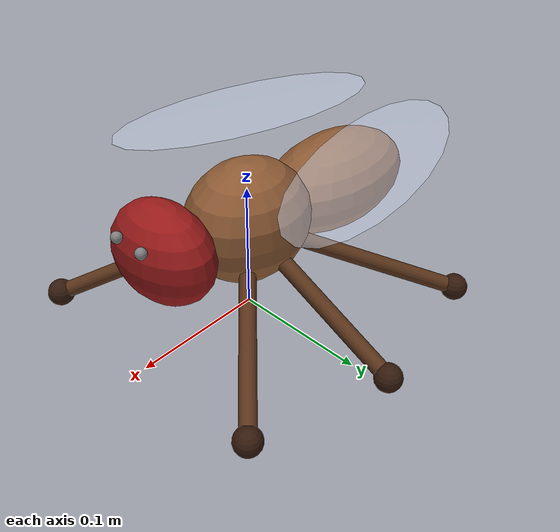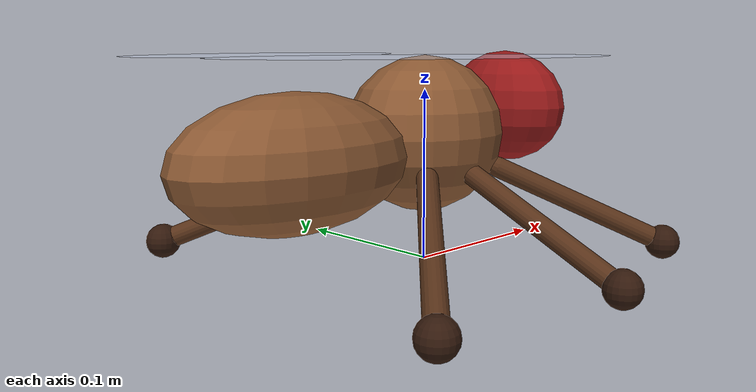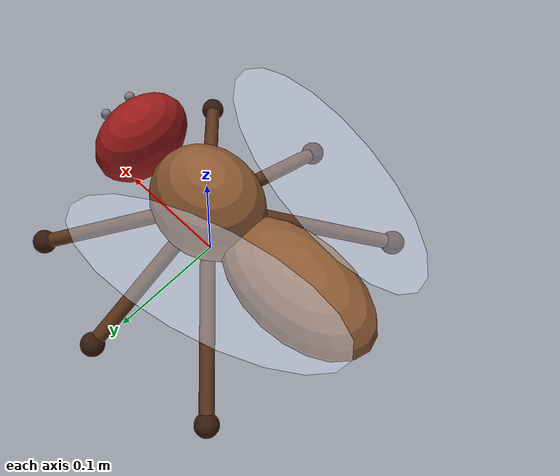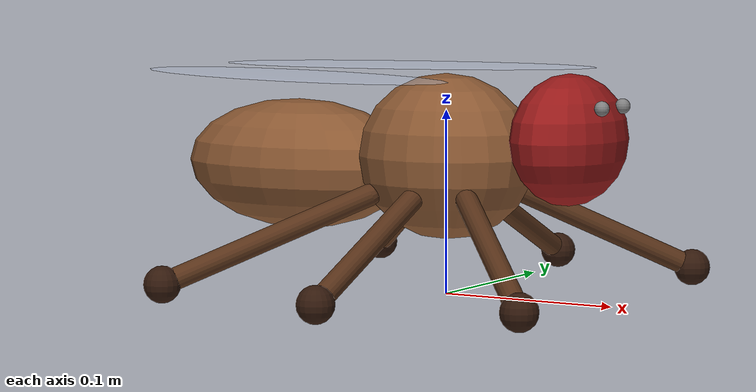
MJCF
<mujoco model="simple_fly">
  <compiler angle="radian" autolimits="true"/>
  <option timestep="0.0001" gravity="0 0 -981" density="0.00128" viscosity="0.000185" integrator="implicitfast"/>
  <default>
    <geom contype="0" conaffinity="0" rgba="0.55 0.35 0.2 1"/>
    <default class="leg">
      <geom type="capsule" size="0.006" mass="0.000005" rgba="0.35 0.2 0.1 1"/>
    </default>
    <default class="foot">
      <geom type="sphere" size="0.01" mass="0.000002" contype="1" conaffinity="1" friction="0.02 0.001 0.0001" rgba="0.2 0.1 0.05 1"/>
    </default>
  </default>
  <worldbody>
    <body name="thorax" pos="0 0 0.075">
      <freejoint name="free"/>
      <site name="thorax" size="0.01"/>
      <geom name="thorax" type="ellipsoid" size="0.05 0.042 0.045" mass="0.00040" fluidshape="ellipsoid"/>
      <geom name="head" type="ellipsoid" pos="0.075 0 0.012" size="0.028 0.042 0.035" mass="0.00013" fluidshape="ellipsoid" rgba="0.6 0.1 0.1 1"/>
      <geom name="abdomen" type="ellipsoid" pos="-0.095 0 -0.008" size="0.07 0.04 0.036" mass="0.00040" fluidshape="ellipsoid"/>
      <geom name="wing_left" type="ellipsoid" pos="-0.06 0.06 0.045" size="0.11 0.04 0.001" euler="0 0 0.25" mass="0.000002" rgba="0.8 0.85 0.95 0.4" group="1"/>
      <geom name="wing_right" type="ellipsoid" pos="-0.06 -0.06 0.045" size="0.11 0.04 0.001" euler="0 0 -0.25" mass="0.000002" rgba="0.8 0.85 0.95 0.4" group="1"/>
      <site name="eye_left" pos="0.085 0.03 0.02" size="0.005"/>
      <site name="eye_right" pos="0.085 -0.03 0.02" size="0.005"/>
      <site name="antenna_left" pos="0.1 0.012 0.03" size="0.004"/>
      <site name="antenna_right" pos="0.1 -0.012 0.03" size="0.004"/>
      <geom class="leg" fromto="0.03 0.03 -0.02 0.10 0.10 -0.065"/>
      <geom class="leg" fromto="0.00 0.035 -0.02 0.00 0.13 -0.065"/>
      <geom class="leg" fromto="-0.03 0.03 -0.02 -0.11 0.11 -0.065"/>
      <geom class="leg" fromto="0.03 -0.03 -0.02 0.10 -0.10 -0.065"/>
      <geom class="leg" fromto="0.00 -0.035 -0.02 0.00 -0.13 -0.065"/>
      <geom class="leg" fromto="-0.03 -0.03 -0.02 -0.11 -0.11 -0.065"/>
      <geom class="foot" name="foot_T1_left" pos="0.10 0.10 -0.065"/>
      <geom class="foot" name="foot_T2_left" pos="0.00 0.13 -0.065"/>
      <geom class="foot" name="foot_T3_left" pos="-0.11 0.11 -0.065"/>
      <geom class="foot" name="foot_T1_right" pos="0.10 -0.10 -0.065"/>
      <geom class="foot" name="foot_T2_right" pos="0.00 -0.13 -0.065"/>
      <geom class="foot" name="foot_T3_right" pos="-0.11 -0.11 -0.065"/>
    </body>
  </worldbody>
</mujoco>
